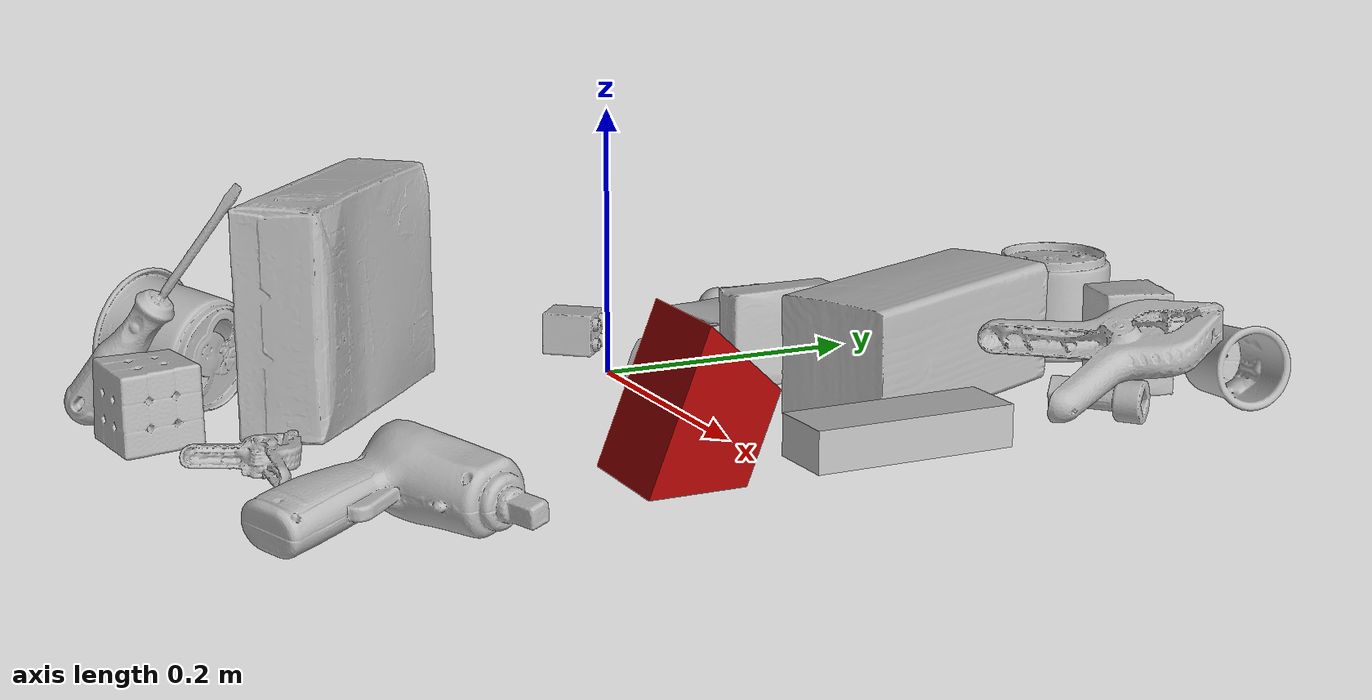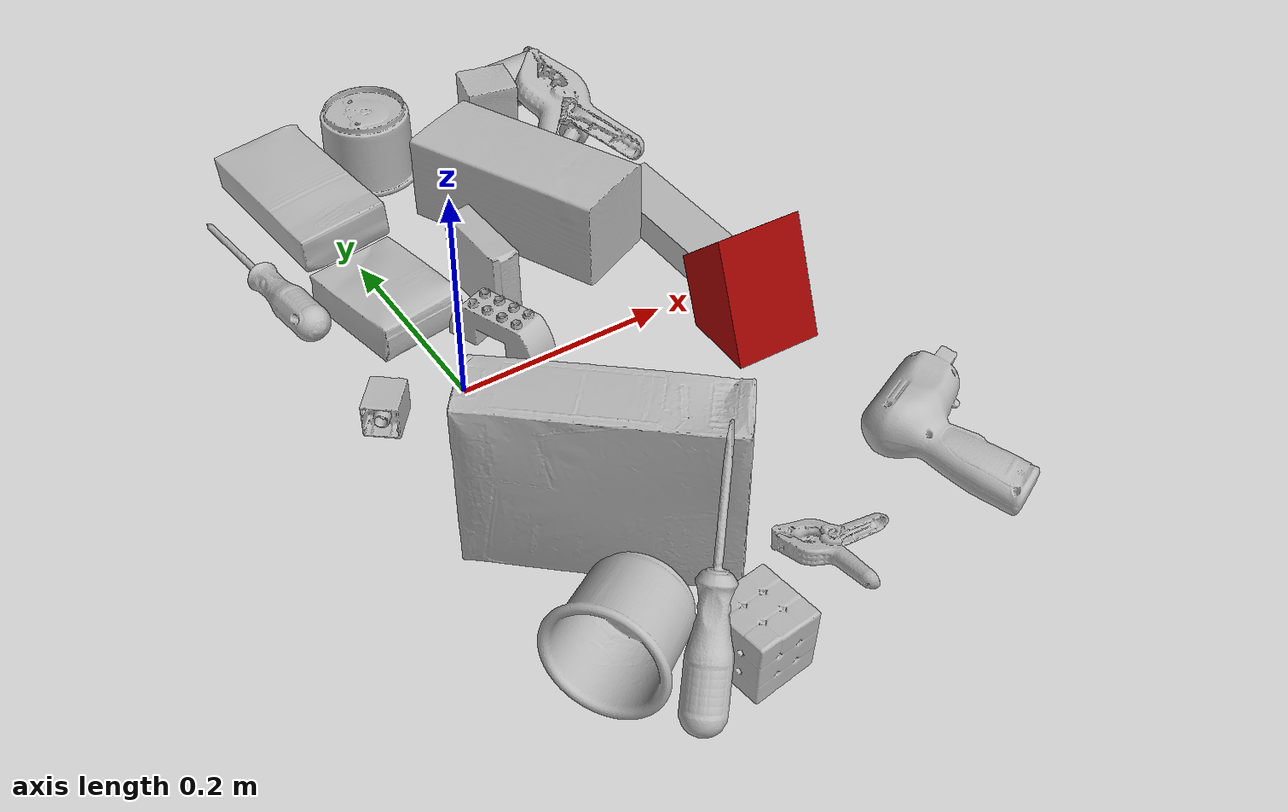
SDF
<sdf version="1.4">
  <world name="default">
    <light name="light1" type="point">
      <pose>0 0 1 0 0 0</pose>
      <diffuse>3 3 3 1</diffuse>
      <specular>3 3 3 1</specular>
    </light>
    <light name="light2" type="point">
      <pose>0 0.5 2 0 0 0</pose>
      <diffuse>1 1 1 1</diffuse>
      <specular>1 1 1 1</specular>
    </light>
    <light name="light3" type="point">
      <pose>0 0.5 2 0 0 0</pose>
      <diffuse>3 3 3 1</diffuse>
      <specular>3 3 3 1</specular>
    </light>
    <scene>
      <ambient>0.7 0.7 0.7</ambient>
    </scene>
    <model name="box21">
      <link name="link_box21">
        <collision name="default">
          <geometry>
            <mesh>
              <uri>model://cracker_box/collision_meshes/collision.obj</uri>
              <scale>1.0 1.0 1.0</scale>
            </mesh>
          </geometry>
          <surface>
            <friction>
              <ode>
                <mu>0.5</mu>
                <mu2>0.5</mu2>
              </ode>
            </friction>
          <contact>
        <ode>
            <max_vel>0</max_vel>
            <min_depth>0.0001</min_depth>
            <kp>1e8</kp>
        </ode>
    </contact></surface>
        </collision>
        <visual name="default">
          <geometry>
            <mesh>
              <uri>model://cracker_box/visual_meshes/visual.dae</uri>
              <scale>1.0 1.0 1.0</scale>
            </mesh>
          </geometry>
        </visual>
        <inertial>
          <mass>3.1344146728515625</mass>
          <pose>0.0009464123286306858 0.00025434247800149024 -0.0017029535956680775 -0.0003162077429326042 -0.011106488668875016 0.0025467950024750923</pose>
          <inertia>
            <ixx>0.0079725515</ixx>
            <iyy>0.01316425</iyy>
            <izz>0.01878659</izz>
            <ixy>0</ixy>
            <ixz>0</ixz>
            <iyz>0</iyz>
          </inertia>
        </inertial>
      </link>
      <pose>0.005821241997182369 -0.21074119210243225 0.08175767958164215 1.5452351117179002 0.009040488520285416 2.435281124051797</pose>
    </model>
    <model name="box22">
      <link name="link_box22">
        <collision name="default">
          <geometry>
            <mesh>
              <uri>model://jenga/collision_meshes/collision.obj</uri>
              <scale>1.0 1.0 1.0</scale>
            </mesh>
          </geometry>
          <surface>
            <friction>
              <ode>
                <mu>0.5</mu>
                <mu2>0.5</mu2>
              </ode>
            </friction>
          <contact>
        <ode>
            <max_vel>0</max_vel>
            <min_depth>0.0001</min_depth>
            <kp>1e8</kp>
        </ode>
    </contact></surface>
        </collision>
        <visual name="default">
          <geometry>
            <mesh>
              <uri>model://jenga/visual_meshes/visual.dae</uri>
              <scale>1.0 1.0 1.0</scale>
            </mesh>
          </geometry>
        </visual>
        <inertial>
          <mass>0.23869852721691132</mass>
          <pose>-2.502855807051674e-07 -0.0001025000965455547 -4.092339804628864e-05 0.0 -7.34215461761844e-07 0.0</pose>
          <inertia>
            <ixx>6.605367e-05</ixx>
            <iyy>0.00044757788</iyy>
            <izz>0.00047782745</izz>
            <ixy>0</ixy>
            <ixz>0</ixz>
            <iyz>0</iyz>
          </inertia>
        </inertial>
      </link>
      <pose>0.27303627133369446 0.09125595539808273 0.014999999664723873 3.1415926293518046 1.8194414662776256e-10 1.5780418317627416</pose>
    </model>
    <model name="box23">
      <link name="link_box23">
        <collision name="default">
          <geometry>
            <mesh>
              <uri>model://rubiks_cube/collision_meshes/collision.obj</uri>
              <scale>1.0 1.0 1.0</scale>
            </mesh>
          </geometry>
          <surface>
            <friction>
              <ode>
                <mu>0.5</mu>
                <mu2>0.5</mu2>
              </ode>
            </friction>
          <contact>
        <ode>
            <max_vel>0</max_vel>
            <min_depth>0.0001</min_depth>
            <kp>1e8</kp>
        </ode>
    </contact></surface>
        </collision>
        <visual name="default">
          <geometry>
            <mesh>
              <uri>model://rubiks_cube/visual_meshes/visual.dae</uri>
              <scale>1.0 1.0 1.0</scale>
            </mesh>
          </geometry>
        </visual>
        <inertial>
          <mass>0.26229962706565857</mass>
          <pose>2.6721041649580002e-05 5.2569666877388954e-05 -7.264316082000732e-06 -0.05467189873579491 -0.09814109048128683 -0.0344550730209751</pose>
          <inertia>
            <ixx>0.00014493814</ixx>
            <iyy>0.00014426222</iyy>
            <izz>0.00014613918</izz>
            <ixy>0</ixy>
            <ixz>0</ixz>
            <iyz>0</iyz>
          </inertia>
        </inertial>
      </link>
      <pose>0.039229847490787506 -0.3581642806529999 0.029330087825655937 1.5776127176668089 -0.016678249493065674 1.696430345727869</pose>
    </model>
    <model name="cup1">
      <link name="link_cup1">
        <collision name="default">
          <geometry>
            <mesh>
              <uri>model://j_cups/collision_meshes/collision.obj</uri>
              <scale>1.0 1.0 1.0</scale>
            </mesh>
          </geometry>
          <surface>
            <friction>
              <ode>
                <mu>0.5</mu>
                <mu2>0.5</mu2>
              </ode>
            </friction>
          <contact>
        <ode>
            <max_vel>0</max_vel>
            <min_depth>0.0001</min_depth>
            <kp>1e8</kp>
        </ode>
    </contact></surface>
        </collision>
        <visual name="default">
          <geometry>
            <mesh>
              <uri>model://j_cups/visual_meshes/visual.dae</uri>
              <scale>1.0 1.0 1.0</scale>
            </mesh>
          </geometry>
        </visual>
        <inertial>
          <mass>0.10388943552970886</mass>
          <pose>0.0006164857186377048 0.0005398984649218619 -0.0013479008339345455 0.03030360356214998 0.03758024855654077 0.43868424196936845</pose>
          <inertia>
            <ixx>0.00015254253</ixx>
            <iyy>0.0001541288</iyy>
            <izz>0.00017584988</izz>
            <ixy>0</ixy>
            <ixz>0</ixz>
            <iyz>0</iyz>
          </inertia>
        </inertial>
      </link>
      <pose>0.07998612523078918 0.3420644700527191 0.03814781829714775 -3.141523803827374 0.000630090644833099 1.1002485828506856</pose>
    </model>
    <model name="cup2">
      <link name="link_cup2">
        <collision name="default">
          <geometry>
            <mesh>
              <uri>model://i_cups/collision_meshes/collision.obj</uri>
              <scale>1.0 1.0 1.0</scale>
            </mesh>
          </geometry>
          <surface>
            <friction>
              <ode>
                <mu>0.5</mu>
                <mu2>0.5</mu2>
              </ode>
            </friction>
          <contact>
        <ode>
            <max_vel>0</max_vel>
            <min_depth>0.0001</min_depth>
            <kp>1e8</kp>
        </ode>
    </contact></surface>
        </collision>
        <visual name="default">
          <geometry>
            <mesh>
              <uri>model://i_cups/visual_meshes/visual.dae</uri>
              <scale>1.0 1.0 1.0</scale>
            </mesh>
          </geometry>
        </visual>
        <inertial>
          <mass>0.057485051453113556</mass>
          <pose>0.00011239853483857587 0.00016797262651380152 -0.000857901235576719 -0.028982969026390082 -0.03987335468246028 -0.34591562504163004</pose>
          <inertia>
            <ixx>7.958892e-05</ixx>
            <iyy>8.029015e-05</iyy>
            <izz>8.8953486e-05</izz>
            <ixy>0</ixy>
            <ixz>0</ixz>
            <iyz>0</iyz>
          </inertia>
        </inertial>
      </link>
      <pose>-0.04492930695414543 -0.31400594115257263 0.04490421712398529 1.231700603276105 1.1959858290838006 -1.31692350688478</pose>
    </model>
    <model name="box11">
      <link name="link_box11">
        <collision name="default">
          <geometry>
            <mesh>
              <uri>model://wood_block/collision_meshes/collision.obj</uri>
              <scale>1.0 1.0 1.0</scale>
            </mesh>
          </geometry>
          <surface>
            <friction>
              <ode>
                <mu>0.5</mu>
                <mu2>0.5</mu2>
              </ode>
            </friction>
          <contact>
        <ode>
            <max_vel>0</max_vel>
            <min_depth>0.0001</min_depth>
            <kp>1e8</kp>
        </ode>
    </contact></surface>
        </collision>
        <visual name="default">
          <geometry>
            <mesh>
              <uri>model://wood_block/visual_meshes/visual.dae</uri>
              <scale>1.0 1.0 1.0</scale>
            </mesh>
          </geometry>
        </visual>
        <inertial>
          <mass>2.2218124866485596</mass>
          <pose>-5.813315510749817e-06 -0.000570809468626976 0.0002640858292579651 -0.052211005792275555 -0.005192694700552194 -0.006861375481739596</pose>
          <inertia>
            <ixx>0.0029731211</ixx>
            <iyy>0.009392092</iyy>
            <izz>0.009356961</izz>
            <ixy>0</ixy>
            <ixz>0</ixz>
            <iyz>0</iyz>
          </inertia>
        </inertial>
      </link>
      <pose>0.16329126060009003 0.17094670236110687 0.04525851085782051 -0.0052075907520729384 0.005718711816951641 1.991301635028354</pose>
    </model>
    <model name="box12">
      <link name="link_box12">
        <collision name="default">
          <geometry>
            <mesh>
              <uri>model://sugar_box/collision_meshes/collision.obj</uri>
              <scale>1.0 1.0 1.0</scale>
            </mesh>
          </geometry>
          <surface>
            <friction>
              <ode>
                <mu>0.5</mu>
                <mu2>0.5</mu2>
              </ode>
            </friction>
          <contact>
        <ode>
            <max_vel>0</max_vel>
            <min_depth>0.0001</min_depth>
            <kp>1e8</kp>
        </ode>
    </contact></surface>
        </collision>
        <visual name="default">
          <geometry>
            <mesh>
              <uri>model://sugar_box/visual_meshes/visual.dae</uri>
              <scale>1.0 1.0 1.0</scale>
            </mesh>
          </geometry>
        </visual>
        <inertial>
          <mass>1.0162616968154907</mass>
          <pose>0.0010343727190047503 3.849109634757042e-05 -0.00036364805418998003 -0.0004046261550277283 0.0010506634055573133 0.0026153787890220875</pose>
          <inertia>
            <ixx>0.00084674655</ixx>
            <iyy>0.002736858</iyy>
            <izz>0.0032763465</izz>
            <ixy>0</ixy>
            <ixz>0</ixz>
            <iyz>0</iyz>
          </inertia>
        </inertial>
      </link>
      <pose>-0.00948882196098566 0.3074989914894104 0.023512236773967743 3.0577684403965435 -0.0048794389644800035 1.6624182486690842</pose>
    </model>
    <model name="box13">
      <link name="link_box13">
        <collision name="default">
          <geometry>
            <mesh>
              <uri>model://pudding_box/collision_meshes/collision.obj</uri>
              <scale>1.0 1.0 1.0</scale>
            </mesh>
          </geometry>
          <surface>
            <friction>
              <ode>
                <mu>0.5</mu>
                <mu2>0.5</mu2>
              </ode>
            </friction>
          <contact>
        <ode>
            <max_vel>0</max_vel>
            <min_depth>0.0001</min_depth>
            <kp>1e8</kp>
        </ode>
    </contact></surface>
        </collision>
        <visual name="default">
          <geometry>
            <mesh>
              <uri>model://pudding_box/visual_meshes/visual.dae</uri>
              <scale>1.0 1.0 1.0</scale>
            </mesh>
          </geometry>
        </visual>
        <inertial>
          <mass>0.24922829866409302</mass>
          <pose>0.0004894822486676276 0.0008067885646596551 -0.0005188828217796981 0.005213100397381839 -0.006603797317439846 0.02007982889363753</pose>
          <inertia>
            <ixx>0.00028173975</ixx>
            <iyy>0.00018955652</iyy>
            <izz>0.0004160624</izz>
            <ixy>0</ixy>
            <ixz>0</ixz>
            <iyz>0</iyz>
          </inertia>
        </inertial>
      </link>
      <pose>-0.007279061712324619 0.12846605479717255 0.01868600770831108 3.1415926511357846 -3.932550113935015e-08 0.1951979224032919</pose>
    </model>
    <model name="box14">
      <link name="link_box14">
        <collision name="default">
          <geometry>
            <mesh>
              <uri>model://gelatin_box/collision_meshes/collision.obj</uri>
              <scale>1.0 1.0 1.0</scale>
            </mesh>
          </geometry>
          <surface>
            <friction>
              <ode>
                <mu>0.5</mu>
                <mu2>0.5</mu2>
              </ode>
            </friction>
          <contact>
        <ode>
            <max_vel>0</max_vel>
            <min_depth>0.0001</min_depth>
            <kp>1e8</kp>
        </ode>
    </contact></surface>
        </collision>
        <visual name="default">
          <geometry>
            <mesh>
              <uri>model://gelatin_box/visual_meshes/visual.dae</uri>
              <scale>1.0 1.0 1.0</scale>
            </mesh>
          </geometry>
        </visual>
        <inertial>
          <mass>0.21856601536273956</mass>
          <pose>0.0004319618456065655 0.00011156871914863586 -0.00036403213744051754 -0.001050372093012012 -0.00475581868936722 0.016440559471878533</pose>
          <inertia>
            <ixx>0.00015428978</ixx>
            <iyy>0.000110208384</iyy>
            <izz>0.00023486343</izz>
            <ixy>0</ixy>
            <ixz>0</ixz>
            <iyz>0</iyz>
          </inertia>
        </inertial>
      </link>
      <pose>0.07927132397890091 0.10254010558128357 0.03673621267080307 -0.5861671851460172 1.5473935032489716 -0.5560404457738259</pose>
    </model>
    <model name="cup15">
      <link name="link_cup15">
        <collision name="default">
          <geometry>
            <mesh>
              <uri>model://b_cups/collision_meshes/collision.obj</uri>
              <scale>1.0 1.0 1.0</scale>
            </mesh>
          </geometry>
          <surface>
            <friction>
              <ode>
                <mu>0.5</mu>
                <mu2>0.5</mu2>
              </ode>
            </friction>
          <contact>
        <ode>
            <max_vel>0</max_vel>
            <min_depth>0.0001</min_depth>
            <kp>1e8</kp>
        </ode>
    </contact></surface>
        </collision>
        <visual name="default">
          <geometry>
            <mesh>
              <uri>model://b_cups/visual_meshes/visual.dae</uri>
              <scale>1.0 1.0 1.0</scale>
            </mesh>
          </geometry>
        </visual>
        <inertial>
          <mass>0.04691024869680405</mass>
          <pose>0.0005182002787478268 0.0018058588029816747 -0.0013381802709773183 0.1135631498080702 0.03872518969029637 -0.3456955043116969</pose>
          <inertia>
            <ixx>3.0706047e-05</ixx>
            <iyy>3.012308e-05</iyy>
            <izz>2.5838557e-05</izz>
            <ixy>0</ixy>
            <ixz>0</ixz>
            <iyz>0</iyz>
          </inertia>
        </inertial>
      </link>
      <pose>0.2642844617366791 0.3726675808429718 0.027815308421850204 -1.4710081974747065 0.4458266968569615 -1.6203903590810247</pose>
    </model>
    <model name="toy1">
      <link name="link_toy1">
        <collision name="default">
          <geometry>
            <mesh>
              <uri>model://e_lego_duplo/collision_meshes/collision.obj</uri>
              <scale>1.0 1.0 1.0</scale>
            </mesh>
          </geometry>
          <surface>
            <friction>
              <ode>
                <mu>0.5</mu>
                <mu2>0.5</mu2>
              </ode>
            </friction>
          <contact>
        <ode>
            <max_vel>0</max_vel>
            <min_depth>0.0001</min_depth>
            <kp>1e8</kp>
        </ode>
    </contact></surface>
        </collision>
        <visual name="default">
          <geometry>
            <mesh>
              <uri>model://e_lego_duplo/visual_meshes/visual.dae</uri>
              <scale>1.0 1.0 1.0</scale>
            </mesh>
          </geometry>
        </visual>
        <inertial>
          <mass>0.06732096523046494</mass>
          <pose>0.000325604691170156 0.00023485434940084815 0.001952146296389401 -0.02256754688519212 -6.825533823954374e-05 -0.007625149208872714</pose>
          <inertia>
            <ixx>1.40386455e-05</ixx>
            <iyy>5.761822e-05</iyy>
            <izz>5.6108554e-05</izz>
            <ixy>0</ixy>
            <ixz>0</ixz>
            <iyz>0</iyz>
          </inertia>
        </inertial>
      </link>
      <pose>0.05798177793622017 0.035568226128816605 0.021809017285704613 5.602949772169988e-07 -9.030386877167434e-08 1.946451047937657</pose>
    </model>
    <model name="toy2">
      <link name="link_toy2">
        <collision name="default">
          <geometry>
            <mesh>
              <uri>model://c_toy_airplane/collision_meshes/collision.obj</uri>
              <scale>1.0 1.0 1.0</scale>
            </mesh>
          </geometry>
          <surface>
            <friction>
              <ode>
                <mu>0.5</mu>
                <mu2>0.5</mu2>
              </ode>
            </friction>
          <contact>
        <ode>
            <max_vel>0</max_vel>
            <min_depth>0.0001</min_depth>
            <kp>1e8</kp>
        </ode>
    </contact></surface>
        </collision>
        <visual name="default">
          <geometry>
            <mesh>
              <uri>model://c_toy_airplane/visual_meshes/visual.dae</uri>
              <scale>1.0 1.0 1.0</scale>
            </mesh>
          </geometry>
        </visual>
        <inertial>
          <mass>0.036399733275175095</mass>
          <pose>-0.00023024277470540255 -4.4302899482318026e-07 -0.0060805329121649265 -0.006192184726307751 -0.016797944030005924 0.7654593329003626</pose>
          <inertia>
            <ixx>1.6714015e-05</ixx>
            <iyy>1.6666843e-05</iyy>
            <izz>3.9241195e-06</izz>
            <ixy>0</ixy>
            <ixz>0</ixz>
            <iyz>0</iyz>
          </inertia>
        </inertial>
      </link>
      <pose>0.26471641659736633 0.2584489583969116 0.015391443856060505 1.805215005148334 -1.5459840740051358 -1.1188414136036395</pose>
    </model>
    <model name="toy3">
      <link name="link_toy3">
        <collision name="default">
          <geometry>
            <mesh>
              <uri>model://foam_brick/collision_meshes/collision.obj</uri>
              <scale>1.0 1.0 1.0</scale>
            </mesh>
          </geometry>
          <surface>
            <friction>
              <ode>
                <mu>0.5</mu>
                <mu2>0.5</mu2>
              </ode>
            </friction>
          <contact>
        <ode>
            <max_vel>0</max_vel>
            <min_depth>0.0001</min_depth>
            <kp>1e8</kp>
        </ode>
    </contact></surface>
        </collision>
        <visual name="default">
          <geometry>
            <mesh>
              <uri>model://foam_brick/visual_meshes/visual.dae</uri>
              <scale>1.0 1.0 1.0</scale>
            </mesh>
          </geometry>
        </visual>
        <inertial>
          <mass>0.28719362616539</mass>
          <pose>-0.0002522472059354186 0.00034584346576593816 -0.0002532101352699101 -0.2940183114741006 0.017274439707053432 -0.0007449906726392561</pose>
          <inertia>
            <ixx>0.00012545152</ixx>
            <iyy>0.00020028985</iyy>
            <izz>0.00020283528</izz>
            <ixy>0</ixy>
            <ixz>0</ixz>
            <iyz>0</iyz>
          </inertia>
        </inertial>
      </link>
      <pose>0.20796941220760345 0.32241934537887573 0.03871931508183479 0.5944462892499296 -1.5391665626433682 -2.389131135525209</pose>
    </model>
    <model name="toy4">
      <link name="link_toy4">
        <collision name="default">
          <geometry>
            <mesh>
              <uri>model://prism/collision_meshes/collision.obj</uri>
              <scale>1.0 1.0 1.0</scale>
            </mesh>
          </geometry>
          <surface>
            <friction>
              <ode>
                <mu>0.5</mu>
                <mu2>0.5</mu2>
              </ode>
            </friction>
          <contact>
        <ode>
            <max_vel>0</max_vel>
            <min_depth>0.0001</min_depth>
            <kp>1e8</kp>
        </ode>
    </contact></surface>
        </collision>
        <visual name="default">
          <geometry>
            <mesh>
              <uri>model://prism/visual_meshes/visual.dae</uri>
              <scale>1.0 1.0 1.0</scale>
            </mesh>
          </geometry>
        </visual>
        <inertial>
          <mass>0.7170383930206299</mass>
          <pose>-9.85359656624496e-05 -4.96157269935793e-07 -0.0033869098406285048 0.0 0.006559181231804993 0.0</pose>
          <inertia>
            <ixx>0.0006471183</ixx>
            <iyy>0.0007820508</iyy>
            <izz>0.0009579188</izz>
            <ixy>0</ixy>
            <ixz>0</ixz>
            <iyz>0</iyz>
          </inertia>
        </inertial>
      </link>
      <pose>0.258146196603775 -0.05380716919898987 0.04270758852362633 3.1415923798754117 1.1942059344956828 -1.5870812831122634</pose>
    </model>
    <model name="toy5">
      <link name="link_toy5">
        <collision name="default">
          <geometry>
            <mesh>
              <uri>model://b_toy_airplane/collision_meshes/collision.obj</uri>
              <scale>1.0 1.0 1.0</scale>
            </mesh>
          </geometry>
          <surface>
            <friction>
              <ode>
                <mu>0.5</mu>
                <mu2>0.5</mu2>
              </ode>
            </friction>
          <contact>
        <ode>
            <max_vel>0</max_vel>
            <min_depth>0.0001</min_depth>
            <kp>1e8</kp>
        </ode>
    </contact></surface>
        </collision>
        <visual name="default">
          <geometry>
            <mesh>
              <uri>model://b_toy_airplane/visual_meshes/visual.dae</uri>
              <scale>1.0 1.0 1.0</scale>
            </mesh>
          </geometry>
        </visual>
        <inertial>
          <mass>0.399619996547699</mass>
          <pose>0.005081363022327423 0.004015584941953421 0.009543066844344139 -0.04001809649421662 -0.04022184162979335 -0.5601502893443677</pose>
          <inertia>
            <ixx>0.0007419019</ixx>
            <iyy>0.00029654545</iyy>
            <izz>0.0009229998</izz>
            <ixy>0</ixy>
            <ixz>0</ixz>
            <iyz>0</iyz>
          </inertia>
        </inertial>
      </link>
      <pose>0.28278204798698425 -0.2694757282733917 0.01697787269949913 0.18487646579685602 0.11349920648324016 0.4480538386743058</pose>
    </model>
    <model name="toy6">
      <link name="link_toy6">
        <collision name="default">
          <geometry>
            <mesh>
              <uri>model://f_lego_duplo/collision_meshes/collision.obj</uri>
              <scale>1.0 1.0 1.0</scale>
            </mesh>
          </geometry>
          <surface>
            <friction>
              <ode>
                <mu>0.5</mu>
                <mu2>0.5</mu2>
              </ode>
            </friction>
          <contact>
        <ode>
            <max_vel>0</max_vel>
            <min_depth>0.0001</min_depth>
            <kp>1e8</kp>
        </ode>
    </contact></surface>
        </collision>
        <visual name="default">
          <geometry>
            <mesh>
              <uri>model://f_lego_duplo/visual_meshes/visual.dae</uri>
              <scale>1.0 1.0 1.0</scale>
            </mesh>
          </geometry>
        </visual>
        <inertial>
          <mass>0.05315950885415077</mass>
          <pose>2.3694145056651905e-05 0.0001339314185315743 0.0018837872194126248 0.029838727868319145 -0.014424898970195728 -0.6756716124708322</pose>
          <inertia>
            <ixx>1.1232896e-05</ixx>
            <iyy>1.1332969e-05</iyy>
            <izz>9.750634e-06</izz>
            <ixy>0</ixy>
            <ixz>0</ixz>
            <iyz>0</iyz>
          </inertia>
        </inertial>
      </link>
      <pose>-0.07054666429758072 0.003684024792164564 0.016206786036491394 1.5790395955168017 0.00017376695564658308 2.4622766121955024</pose>
    </model>
    <model name="hardware1">
      <link name="link_hardware1">
        <collision name="default">
          <geometry>
            <mesh>
              <uri>model://flat_screwdriver/collision_meshes/collision.obj</uri>
              <scale>1.0 1.0 1.0</scale>
            </mesh>
          </geometry>
          <surface>
            <friction>
              <ode>
                <mu>0.5</mu>
                <mu2>0.5</mu2>
              </ode>
            </friction>
          <contact>
        <ode>
            <max_vel>0</max_vel>
            <min_depth>0.0001</min_depth>
            <kp>1e8</kp>
        </ode>
    </contact></surface>
        </collision>
        <visual name="default">
          <geometry>
            <mesh>
              <uri>model://flat_screwdriver/visual_meshes/visual.dae</uri>
              <scale>1.0 1.0 1.0</scale>
            </mesh>
          </geometry>
        </visual>
        <inertial>
          <mass>0.12191366404294968</mass>
          <pose>-0.0489187091588974 -0.0006576801533810794 -0.0006140916957519948 -0.5614853566550635 -0.0032337267722331534 0.006982277608032515</pose>
          <inertia>
            <ixx>1.4404012e-05</ixx>
            <iyy>0.00018286215</iyy>
            <izz>0.00018277747</izz>
            <ixy>0</ixy>
            <ixz>0</ixz>
            <iyz>0</iyz>
          </inertia>
        </inertial>
      </link>
      <pose>0.009565805085003376 -0.3425503075122833 0.08817574381828308 -1.833677877290835 -0.9279237751363943 0.8388593462687991</pose>
    </model>
    <model name="hardware2">
      <link name="link_hardware2">
        <collision name="default">
          <geometry>
            <mesh>
              <uri>model://medium_clamp/collision_meshes/collision.obj</uri>
              <scale>1.0 1.0 1.0</scale>
            </mesh>
          </geometry>
          <surface>
            <friction>
              <ode>
                <mu>0.5</mu>
                <mu2>0.5</mu2>
              </ode>
            </friction>
          <contact>
        <ode>
            <max_vel>0</max_vel>
            <min_depth>0.0001</min_depth>
            <kp>1e8</kp>
        </ode>
    </contact></surface>
        </collision>
        <visual name="default">
          <geometry>
            <mesh>
              <uri>model://medium_clamp/visual_meshes/visual.dae</uri>
              <scale>1.0 1.0 1.0</scale>
            </mesh>
          </geometry>
        </visual>
        <inertial>
          <mass>0.018204163759946823</mass>
          <pose>0.005390994716435671 0.00039532413939014077 -0.0001222158025484532 -0.0012269240735234023 0.0025845026557488396 0.03820772126630794</pose>
          <inertia>
            <ixx>4.959469e-06</ixx>
            <iyy>7.217431e-06</iyy>
            <izz>1.1117007e-05</izz>
            <ixy>0</ixy>
            <ixz>0</ixz>
            <iyz>0</iyz>
          </inertia>
        </inertial>
      </link>
      <pose>0.14397194981575012 -0.3126390278339386 0.013314634561538696 -3.0195429200668378 0.07747162219569513 2.3406161428081993</pose>
    </model>
    <model name="hardware3">
      <link name="link_hardware3">
        <collision name="default">
          <geometry>
            <mesh>
              <uri>model://large_clamp/collision_meshes/collision.obj</uri>
              <scale>1.0 1.0 1.0</scale>
            </mesh>
          </geometry>
          <surface>
            <friction>
              <ode>
                <mu>0.5</mu>
                <mu2>0.5</mu2>
              </ode>
            </friction>
          <contact>
        <ode>
            <max_vel>0</max_vel>
            <min_depth>0.0001</min_depth>
            <kp>1e8</kp>
        </ode>
    </contact></surface>
        </collision>
        <visual name="default">
          <geometry>
            <mesh>
              <uri>model://large_clamp/visual_meshes/visual.dae</uri>
              <scale>1.0 1.0 1.0</scale>
            </mesh>
          </geometry>
        </visual>
        <inertial>
          <mass>0.18972517549991608</mass>
          <pose>0.006369356997311115 0.0003585676895454526 -0.00018398048996459693 -0.002133071569430183 0.00967158655684735 0.02663316926682878</pose>
          <inertia>
            <ixx>0.0001673895</ixx>
            <iyy>0.00031788155</iyy>
            <izz>0.00045985627</izz>
            <ixy>0</ixy>
            <ixz>0</ixz>
            <iyz>0</iyz>
          </inertia>
        </inertial>
      </link>
      <pose>0.26639413833618164 0.2724287509918213 0.05055198818445206 -2.871718982369564 -0.1498193618621687 1.4722768207951509</pose>
    </model>
    <model name="hardware4">
      <link name="link_hardware4">
        <collision name="default">
          <geometry>
            <mesh>
              <uri>model://phillips_screwdriver/collision_meshes/collision.obj</uri>
              <scale>1.0 1.0 1.0</scale>
            </mesh>
          </geometry>
          <surface>
            <friction>
              <ode>
                <mu>0.5</mu>
                <mu2>0.5</mu2>
              </ode>
            </friction>
          <contact>
        <ode>
            <max_vel>0</max_vel>
            <min_depth>0.0001</min_depth>
            <kp>1e8</kp>
        </ode>
    </contact></surface>
        </collision>
        <visual name="default">
          <geometry>
            <mesh>
              <uri>model://phillips_screwdriver/visual_meshes/visual.dae</uri>
              <scale>1.0 1.0 1.0</scale>
            </mesh>
          </geometry>
        </visual>
        <inertial>
          <mass>0.10424148291349411</mass>
          <pose>-0.047771818935871124 0.0010362300090491772 -0.000455554953077808 -0.15717568897110376 0.005850990280187748 -0.0021567475529960492</pose>
          <inertia>
            <ixx>1.2247306e-05</ixx>
            <iyy>0.00015355984</iyy>
            <izz>0.00015369034</izz>
            <ixy>0</ixy>
            <ixz>0</ixz>
            <iyz>0</iyz>
          </inertia>
        </inertial>
      </link>
      <pose>-0.08664146065711975 0.22003351151943207 0.015254655852913857 0.4657591244754699 0.03697264079814204 1.6712837348898621</pose>
    </model>
  <physics type="ode">
      <max_contacts>50</max_contacts>
      <ode>
        <solver>
          <type>quick</type>
          <iters>75</iters>
        </solver>
        <constraints>
          <contact_max_correcting_vel>0</contact_max_correcting_vel>
          <contact_surface_layer>0</contact_surface_layer>
        </constraints>
      </ode>
    </physics></world>
</sdf>
